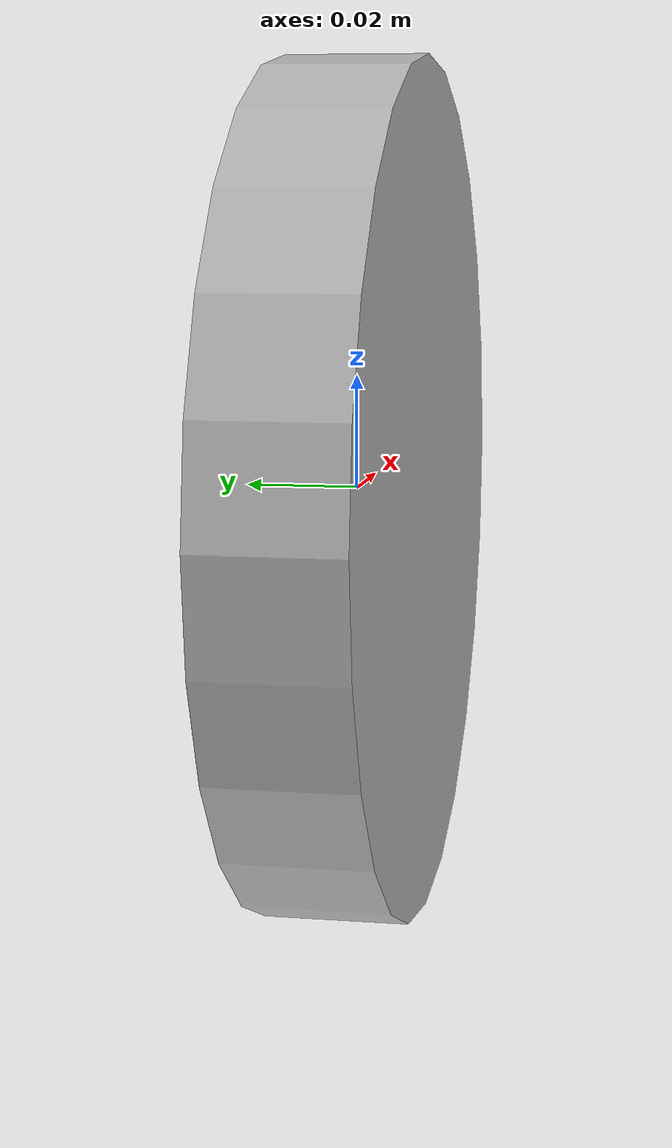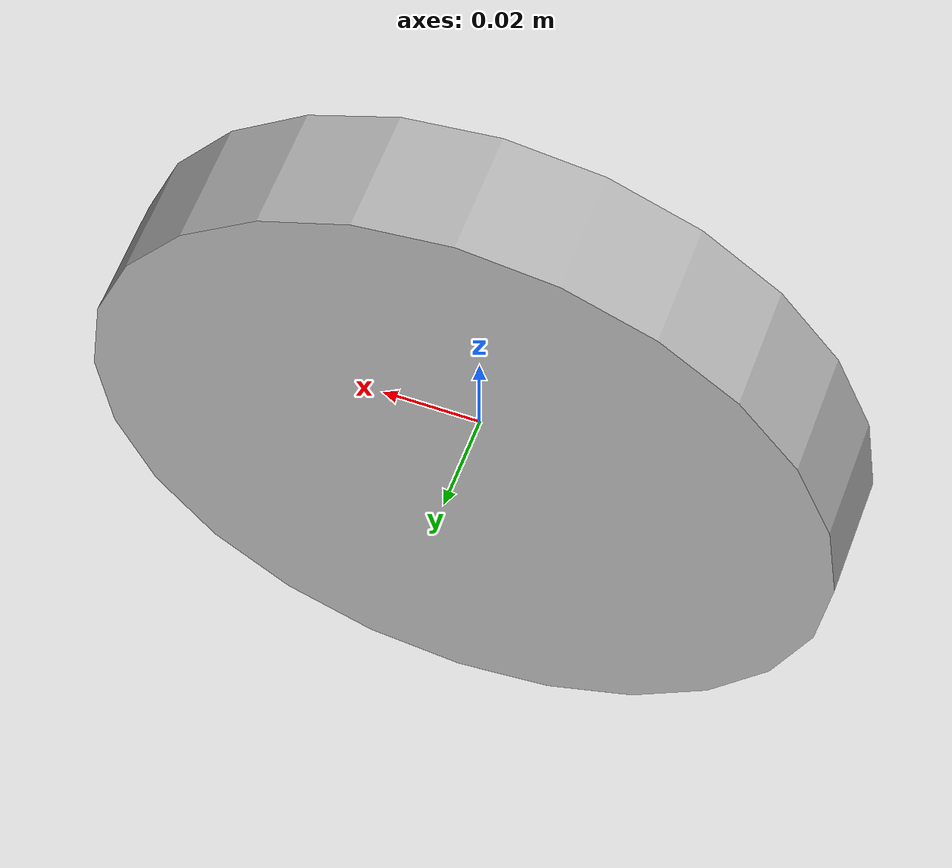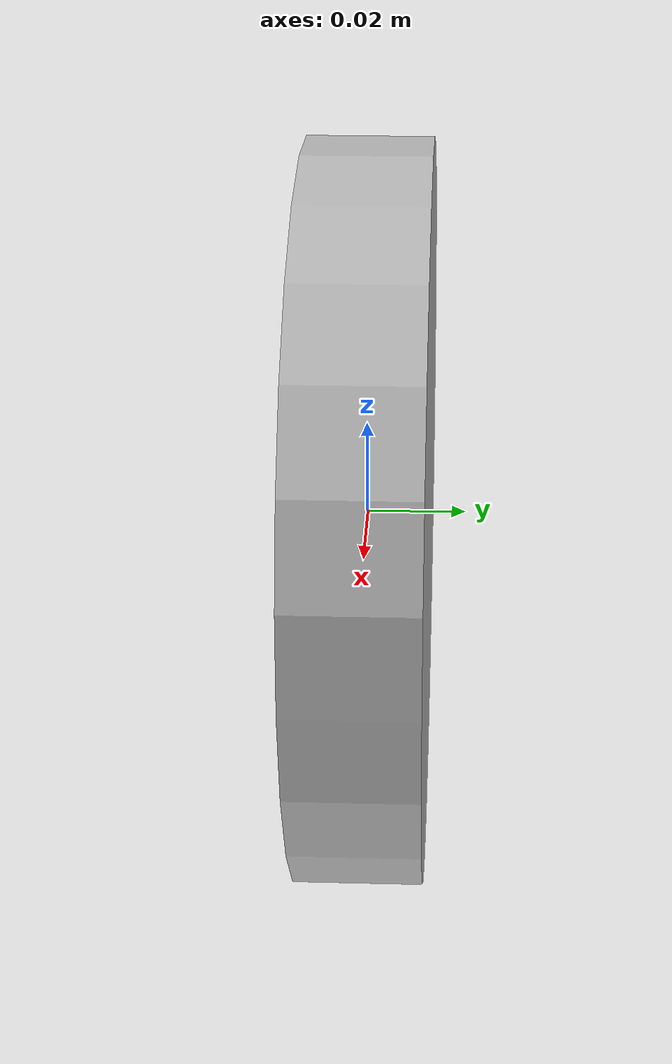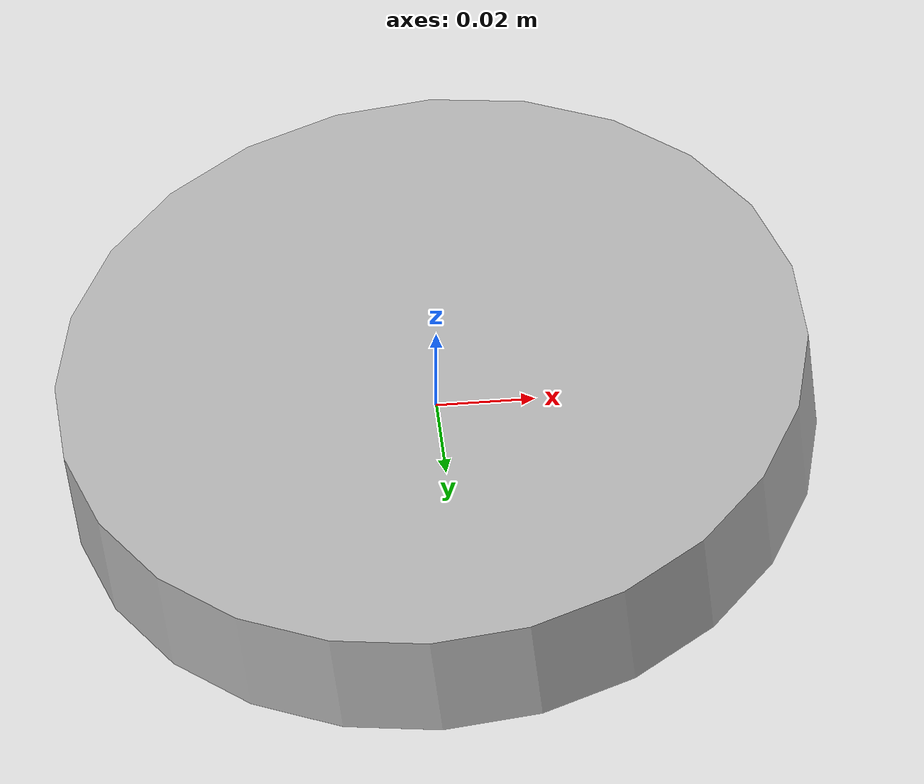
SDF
<?xml version='1.0'?>

<sdf version='1.6'>
    <model name="Wheel">
        <link name="wheel">
            <pose>0 0 0 1.5707963267948966 0 0</pose>
            <collision name="wheel_collision">
                <geometry>
                    <cylinder>
                        <radius>0.07619999999999999</radius>
                        <length>0.0254</length>
                    </cylinder>
                </geometry>
            </collision>
            <visual name="wheel_visual">
                <geometry>
                    <cylinder>
                        <radius>0.07619999999999999</radius>
                        <length>0.0254</length>
                    </cylinder>
                </geometry>
            </visual>
        </link>
    </model>
</sdf>
